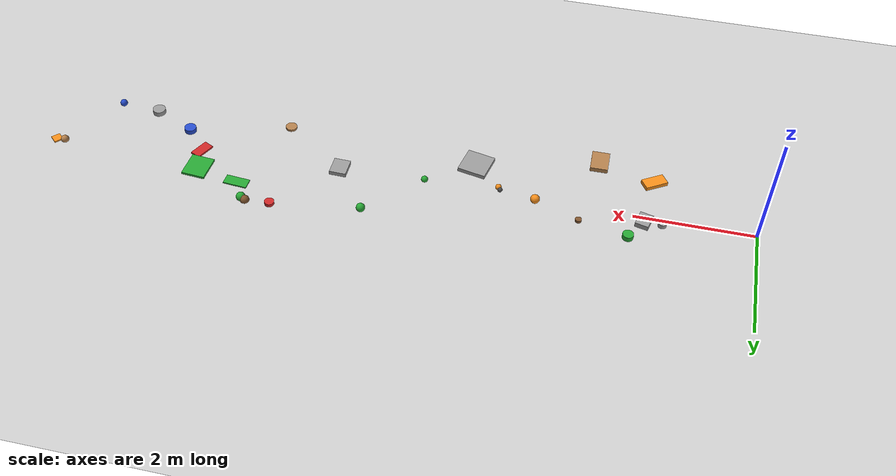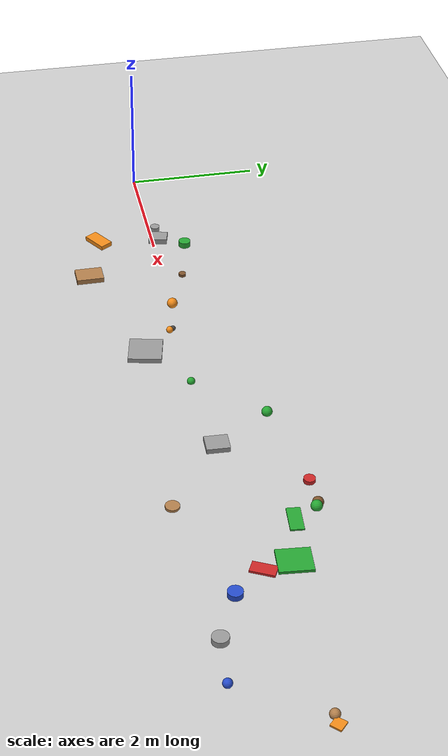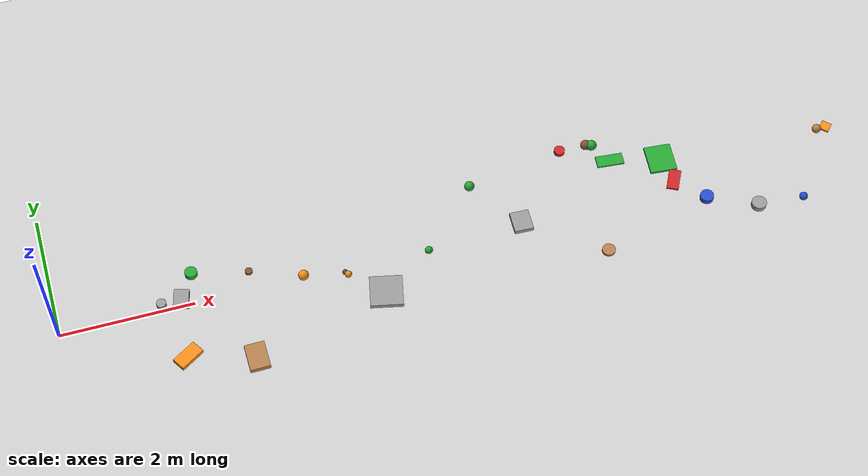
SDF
<?xml version="1.0" ?>
<!-- 由 omni_world.py 自动生成: scene=random seed=1 -->
<sdf version="1.5">
  <world name="random">
    <physics type="ode">
      <type>world</type>
      <max_step_size>0.001</max_step_size>
      <real_time_update_rate>1000</real_time_update_rate>
      <iters>500</iters>
    </physics>
    <include><uri>model://sun</uri></include>
    <include><uri>model://ground_plane</uri></include>
    <model name="r_box_0">
      <static>true</static>
      <pose>8.615 0.725 0.012 0.0000 0.0000 1.4836</pose>
      <link name="link">
        <collision name="collision">
          <geometry><box><size>0.191 0.416 0.024</size></box></geometry>
          <surface><friction><ode><mu>1.0</mu><mu2>1.0</mu2></ode></friction></surface>
        </collision>
        <visual name="visual">
          <geometry><box><size>0.191 0.416 0.024</size></box></geometry>
          <material><script><uri>file://media/materials/scripts/gazebo.material</uri>
            <name>Gazebo/Green</name></script></material>
        </visual>
      </link>
    </model>
    <model name="r_box_1">
      <static>true</static>
      <pose>2.673 -1.132 0.039 0.0000 0.0000 0.0066</pose>
      <link name="link">
        <collision name="collision">
          <geometry><box><size>0.301 0.417 0.079</size></box></geometry>
          <surface><friction><ode><mu>1.0</mu><mu2>1.0</mu2></ode></friction></surface>
        </collision>
        <visual name="visual">
          <geometry><box><size>0.301 0.417 0.079</size></box></geometry>
          <material><script><uri>file://media/materials/scripts/gazebo.material</uri>
            <name>Gazebo/Wood</name></script></material>
        </visual>
      </link>
    </model>
    <model name="r_cyl_2">
      <static>true</static>
      <pose>10.519 -0.651 0.043 0 0 0</pose>
      <link name="link">
        <collision name="collision">
          <geometry><cylinder><radius>0.113</radius><length>0.086</length></cylinder></geometry>
          <surface><friction><ode><mu>1.0</mu><mu2>1.0</mu2></ode></friction></surface>
        </collision>
        <visual name="visual">
          <geometry><cylinder><radius>0.113</radius><length>0.086</length></cylinder></geometry>
          <material><script><uri>file://media/materials/scripts/gazebo.material</uri>
            <name>Gazebo/Grey</name></script></material>
        </visual>
      </link>
    </model>
    <model name="r_box_3">
      <static>true</static>
      <pose>1.818 0.099 0.043 0.0000 0.0000 1.3261</pose>
      <link name="link">
        <collision name="collision">
          <geometry><box><size>0.283 0.226 0.086</size></box></geometry>
          <surface><friction><ode><mu>1.0</mu><mu2>1.0</mu2></ode></friction></surface>
        </collision>
        <visual name="visual">
          <geometry><box><size>0.283 0.226 0.086</size></box></geometry>
          <material><script><uri>file://media/materials/scripts/gazebo.material</uri>
            <name>Gazebo/Grey</name></script></material>
        </visual>
      </link>
    </model>
    <model name="r_sph_4">
      <static>true</static>
      <pose>4.271 -0.149 0.027 0 0 0</pose>
      <link name="link">
        <collision name="collision">
          <geometry><sphere><radius>0.052</radius></sphere></geometry>
          <surface><friction><ode><mu>1.0</mu><mu2>1.0</mu2></ode></friction></surface>
        </collision>
        <visual name="visual">
          <geometry><sphere><radius>0.052</radius></sphere></geometry>
          <material><script><uri>file://media/materials/scripts/gazebo.material</uri>
            <name>Gazebo/Orange</name></script></material>
        </visual>
      </link>
    </model>
    <model name="r_sph_5">
      <static>true</static>
      <pose>4.235 -0.097 0.020 0 0 0</pose>
      <link name="link">
        <collision name="collision">
          <geometry><sphere><radius>0.041</radius></sphere></geometry>
          <surface><friction><ode><mu>1.0</mu><mu2>1.0</mu2></ode></friction></surface>
        </collision>
        <visual name="visual">
          <geometry><sphere><radius>0.041</radius></sphere></geometry>
          <material><script><uri>file://media/materials/scripts/gazebo.material</uri>
            <name>Gazebo/DarkGrey</name></script></material>
        </visual>
      </link>
    </model>
    <model name="r_box_6">
      <static>true</static>
      <pose>9.367 0.537 0.020 0.0000 0.0000 3.0576</pose>
      <link name="link">
        <collision name="collision">
          <geometry><box><size>0.410 0.463 0.041</size></box></geometry>
          <surface><friction><ode><mu>1.0</mu><mu2>1.0</mu2></ode></friction></surface>
        </collision>
        <visual name="visual">
          <geometry><box><size>0.410 0.463 0.041</size></box></geometry>
          <material><script><uri>file://media/materials/scripts/gazebo.material</uri>
            <name>Gazebo/Green</name></script></material>
        </visual>
      </link>
    </model>
    <model name="r_sph_7">
      <static>true</static>
      <pose>11.875 0.409 0.021 0 0 0</pose>
      <link name="link">
        <collision name="collision">
          <geometry><sphere><radius>0.069</radius></sphere></geometry>
          <surface><friction><ode><mu>1.0</mu><mu2>1.0</mu2></ode></friction></surface>
        </collision>
        <visual name="visual">
          <geometry><sphere><radius>0.069</radius></sphere></geometry>
          <material><script><uri>file://media/materials/scripts/gazebo.material</uri>
            <name>Gazebo/Wood</name></script></material>
        </visual>
      </link>
    </model>
    <model name="r_sph_8">
      <static>true</static>
      <pose>6.417 0.848 0.027 0 0 0</pose>
      <link name="link">
        <collision name="collision">
          <geometry><sphere><radius>0.077</radius></sphere></geometry>
          <surface><friction><ode><mu>1.0</mu><mu2>1.0</mu2></ode></friction></surface>
        </collision>
        <visual name="visual">
          <geometry><sphere><radius>0.077</radius></sphere></geometry>
          <material><script><uri>file://media/materials/scripts/gazebo.material</uri>
            <name>Gazebo/Green</name></script></material>
        </visual>
      </link>
    </model>
    <model name="r_cyl_9">
      <static>true</static>
      <pose>9.809 -0.319 0.041 0 0 0</pose>
      <link name="link">
        <collision name="collision">
          <geometry><cylinder><radius>0.104</radius><length>0.082</length></cylinder></geometry>
          <surface><friction><ode><mu>1.0</mu><mu2>1.0</mu2></ode></friction></surface>
        </collision>
        <visual name="visual">
          <geometry><cylinder><radius>0.104</radius><length>0.082</length></cylinder></geometry>
          <material><script><uri>file://media/materials/scripts/gazebo.material</uri>
            <name>Gazebo/Blue</name></script></material>
        </visual>
      </link>
    </model>
    <model name="r_box_10">
      <static>true</static>
      <pose>6.987 0.020 0.037 0.0000 0.0000 1.5384</pose>
      <link name="link">
        <collision name="collision">
          <geometry><box><size>0.332 0.288 0.074</size></box></geometry>
          <surface><friction><ode><mu>1.0</mu><mu2>1.0</mu2></ode></friction></surface>
        </collision>
        <visual name="visual">
          <geometry><box><size>0.332 0.288 0.074</size></box></geometry>
          <material><script><uri>file://media/materials/scripts/gazebo.material</uri>
            <name>Gazebo/Grey</name></script></material>
        </visual>
      </link>
    </model>
    <model name="r_cyl_11">
      <static>true</static>
      <pose>2.044 0.488 0.044 0 0 0</pose>
      <link name="link">
        <collision name="collision">
          <geometry><cylinder><radius>0.092</radius><length>0.089</length></cylinder></geometry>
          <surface><friction><ode><mu>1.0</mu><mu2>1.0</mu2></ode></friction></surface>
        </collision>
        <visual name="visual">
          <geometry><cylinder><radius>0.092</radius><length>0.089</length></cylinder></geometry>
          <material><script><uri>file://media/materials/scripts/gazebo.material</uri>
            <name>Gazebo/Green</name></script></material>
        </visual>
      </link>
    </model>
    <model name="r_sph_12">
      <static>true</static>
      <pose>3.629 0.005 0.044 0 0 0</pose>
      <link name="link">
        <collision name="collision">
          <geometry><sphere><radius>0.079</radius></sphere></geometry>
          <surface><friction><ode><mu>1.0</mu><mu2>1.0</mu2></ode></friction></surface>
        </collision>
        <visual name="visual">
          <geometry><sphere><radius>0.079</radius></sphere></geometry>
          <material><script><uri>file://media/materials/scripts/gazebo.material</uri>
            <name>Gazebo/Orange</name></script></material>
        </visual>
      </link>
    </model>
    <model name="r_cyl_13">
      <static>true</static>
      <pose>7.922 1.086 0.030 0 0 0</pose>
      <link name="link">
        <collision name="collision">
          <geometry><cylinder><radius>0.082</radius><length>0.060</length></cylinder></geometry>
          <surface><friction><ode><mu>1.0</mu><mu2>1.0</mu2></ode></friction></surface>
        </collision>
        <visual name="visual">
          <geometry><cylinder><radius>0.082</radius><length>0.060</length></cylinder></geometry>
          <material><script><uri>file://media/materials/scripts/gazebo.material</uri>
            <name>Gazebo/Red</name></script></material>
        </visual>
      </link>
    </model>
    <model name="r_sph_14">
      <static>true</static>
      <pose>8.350 1.097 0.010 0 0 0</pose>
      <link name="link">
        <collision name="collision">
          <geometry><sphere><radius>0.079</radius></sphere></geometry>
          <surface><friction><ode><mu>1.0</mu><mu2>1.0</mu2></ode></friction></surface>
        </collision>
        <visual name="visual">
          <geometry><sphere><radius>0.079</radius></sphere></geometry>
          <material><script><uri>file://media/materials/scripts/gazebo.material</uri>
            <name>Gazebo/Brown</name></script></material>
        </visual>
      </link>
    </model>
    <model name="r_sph_15">
      <static>true</static>
      <pose>11.217 -0.707 0.043 0 0 0</pose>
      <link name="link">
        <collision name="collision">
          <geometry><sphere><radius>0.064</radius></sphere></geometry>
          <surface><friction><ode><mu>1.0</mu><mu2>1.0</mu2></ode></friction></surface>
        </collision>
        <visual name="visual">
          <geometry><sphere><radius>0.064</radius></sphere></geometry>
          <material><script><uri>file://media/materials/scripts/gazebo.material</uri>
            <name>Gazebo/Blue</name></script></material>
        </visual>
      </link>
    </model>
    <model name="r_sph_16">
      <static>true</static>
      <pose>8.430 1.058 0.024 0 0 0</pose>
      <link name="link">
        <collision name="collision">
          <geometry><sphere><radius>0.081</radius></sphere></geometry>
          <surface><friction><ode><mu>1.0</mu><mu2>1.0</mu2></ode></friction></surface>
        </collision>
        <visual name="visual">
          <geometry><sphere><radius>0.081</radius></sphere></geometry>
          <material><script><uri>file://media/materials/scripts/gazebo.material</uri>
            <name>Gazebo/Green</name></script></material>
        </visual>
      </link>
    </model>
    <model name="r_cyl_17">
      <static>true</static>
      <pose>1.520 0.096 0.038 0 0 0</pose>
      <link name="link">
        <collision name="collision">
          <geometry><cylinder><radius>0.073</radius><length>0.075</length></cylinder></geometry>
          <surface><friction><ode><mu>1.0</mu><mu2>1.0</mu2></ode></friction></surface>
        </collision>
        <visual name="visual">
          <geometry><cylinder><radius>0.073</radius><length>0.075</length></cylinder></geometry>
          <material><script><uri>file://media/materials/scripts/gazebo.material</uri>
            <name>Gazebo/Grey</name></script></material>
        </visual>
      </link>
    </model>
    <model name="r_box_18">
      <static>true</static>
      <pose>9.442 0.122 0.016 0.0000 0.0000 2.6744</pose>
      <link name="link">
        <collision name="collision">
          <geometry><box><size>0.182 0.343 0.033</size></box></geometry>
          <surface><friction><ode><mu>1.0</mu><mu2>1.0</mu2></ode></friction></surface>
        </collision>
        <visual name="visual">
          <geometry><box><size>0.182 0.343 0.033</size></box></geometry>
          <material><script><uri>file://media/materials/scripts/gazebo.material</uri>
            <name>Gazebo/Red</name></script></material>
        </visual>
      </link>
    </model>
    <model name="r_box_19">
      <static>true</static>
      <pose>12.022 0.415 0.013 0.0000 0.0000 2.3737</pose>
      <link name="link">
        <collision name="collision">
          <geometry><box><size>0.156 0.155 0.026</size></box></geometry>
          <surface><friction><ode><mu>1.0</mu><mu2>1.0</mu2></ode></friction></surface>
        </collision>
        <visual name="visual">
          <geometry><box><size>0.156 0.155 0.026</size></box></geometry>
          <material><script><uri>file://media/materials/scripts/gazebo.material</uri>
            <name>Gazebo/Orange</name></script></material>
        </visual>
      </link>
    </model>
    <model name="r_cyl_20">
      <static>true</static>
      <pose>2.869 0.300 0.022 0 0 0</pose>
      <link name="link">
        <collision name="collision">
          <geometry><cylinder><radius>0.055</radius><length>0.044</length></cylinder></geometry>
          <surface><friction><ode><mu>1.0</mu><mu2>1.0</mu2></ode></friction></surface>
        </collision>
        <visual name="visual">
          <geometry><cylinder><radius>0.055</radius><length>0.044</length></cylinder></geometry>
          <material><script><uri>file://media/materials/scripts/gazebo.material</uri>
            <name>Gazebo/Brown</name></script></material>
        </visual>
      </link>
    </model>
    <model name="r_cyl_21">
      <static>true</static>
      <pose>8.092 -0.796 0.020 0 0 0</pose>
      <link name="link">
        <collision name="collision">
          <geometry><cylinder><radius>0.100</radius><length>0.039</length></cylinder></geometry>
          <surface><friction><ode><mu>1.0</mu><mu2>1.0</mu2></ode></friction></surface>
        </collision>
        <visual name="visual">
          <geometry><cylinder><radius>0.100</radius><length>0.039</length></cylinder></geometry>
          <material><script><uri>file://media/materials/scripts/gazebo.material</uri>
            <name>Gazebo/Wood</name></script></material>
        </visual>
      </link>
    </model>
    <model name="r_sph_22">
      <static>true</static>
      <pose>5.525 -0.063 0.011 0 0 0</pose>
      <link name="link">
        <collision name="collision">
          <geometry><sphere><radius>0.059</radius></sphere></geometry>
          <surface><friction><ode><mu>1.0</mu><mu2>1.0</mu2></ode></friction></surface>
        </collision>
        <visual name="visual">
          <geometry><sphere><radius>0.059</radius></sphere></geometry>
          <material><script><uri>file://media/materials/scripts/gazebo.material</uri>
            <name>Gazebo/Green</name></script></material>
        </visual>
      </link>
    </model>
    <model name="r_box_23">
      <static>true</static>
      <pose>4.730 -0.592 0.036 0.0000 0.0000 1.3561</pose>
      <link name="link">
        <collision name="collision">
          <geometry><box><size>0.492 0.488 0.071</size></box></geometry>
          <surface><friction><ode><mu>1.0</mu><mu2>1.0</mu2></ode></friction></surface>
        </collision>
        <visual name="visual">
          <geometry><box><size>0.492 0.488 0.071</size></box></geometry>
          <material><script><uri>file://media/materials/scripts/gazebo.material</uri>
            <name>Gazebo/Grey</name></script></material>
        </visual>
      </link>
    </model>
    <model name="r_box_24">
      <static>true</static>
      <pose>1.723 -0.848 0.035 0.0000 0.0000 2.1306</pose>
      <link name="link">
        <collision name="collision">
          <geometry><box><size>0.206 0.397 0.070</size></box></geometry>
          <surface><friction><ode><mu>1.0</mu><mu2>1.0</mu2></ode></friction></surface>
        </collision>
        <visual name="visual">
          <geometry><box><size>0.206 0.397 0.070</size></box></geometry>
          <material><script><uri>file://media/materials/scripts/gazebo.material</uri>
            <name>Gazebo/Orange</name></script></material>
        </visual>
      </link>
    </model>

  </world>
</sdf>
